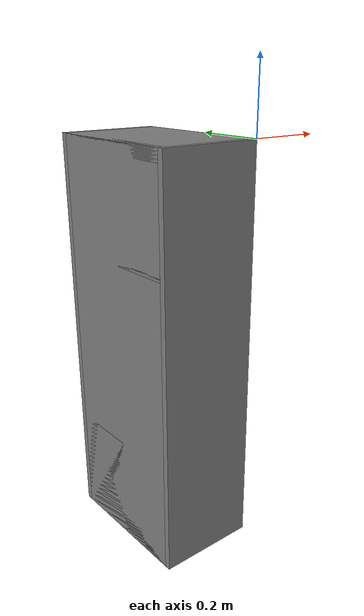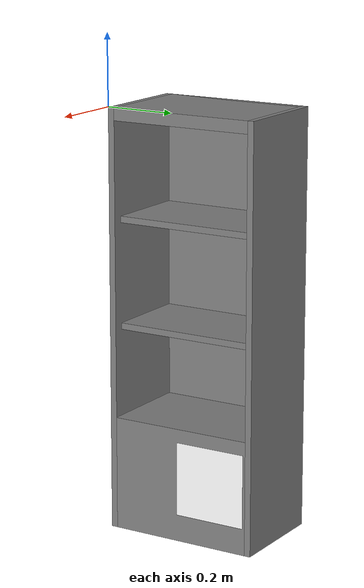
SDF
<?xml version="1.0" ?>
<sdf version="1.4">
    <model name='hcr_shefl_2'>
      <link name='link'>
        <inertial>
          <mass>5</mass>
          <inertia>
            <ixx>1</ixx>
            <ixy>0</ixy>
            <ixz>0</ixz>
            <iyy>1</iyy>
            <iyz>0</iyz>
            <izz>1</izz>
          </inertia>
        </inertial>
        <visual name='left_board'>
          <pose>-0.1475 0.009 -0.598 0 0 0</pose>
          <geometry>
            <box>
              <size>0.295 0.018 1.196</size>
            </box>
          </geometry>
          <material>
            <!-- base_materials/wood -->
            <name>wood</name>
            <ambient>1 1 1 1</ambient>
            <diffuse>0.5 0.5 0.5 1.0</diffuse>
            <specular>0 0 0 1.0</specular>
            <shininess>12.5</shininess>
            <pbr>
              <metal>
                <albedo_map>model://base_materials/wood/textures/light_wood.png</albedo_map>
                <max_anisotropy>16</max_anisotropy>
                <metalness>0</metalness>
              </metal>
            </pbr>
          </material>
        </visual>
        <collision name='collision_left_board'>
          <pose>-0.1475 0.009 -0.598 0 0 0</pose>
          <geometry>
            <box>
              <size>0.295 0.018 1.196</size>
            </box>
          </geometry>
          <max_contacts>10</max_contacts>
          <surface>
            <bounce/>
            <friction>
              <ode/>
            </friction>
            <contact>
              <ode/>
            </contact>
          </surface>
        </collision>
        <visual name='right_board'>
          <pose>-0.1475 0.441 -0.598 0 0 0</pose>
          <geometry>
            <box>
              <size>0.295 0.018 1.196</size>
            </box>
          </geometry>
          <material>
            <!-- base_materials/wood -->
            <name>wood</name>
            <ambient>1 1 1 1</ambient>
            <diffuse>0.5 0.5 0.5 1.0</diffuse>
            <specular>0 0 0 1.0</specular>
            <shininess>12.5</shininess>
            <pbr>
              <metal>
                <albedo_map>model://base_materials/wood/textures/light_wood.png</albedo_map>
                <max_anisotropy>16</max_anisotropy>
                <metalness>0</metalness>
              </metal>
            </pbr>
          </material>
        </visual>
        <collision name='collision_right_board'>
          <pose>-0.1475 0.441 -0.598 0 0 0</pose>
          <geometry>
            <box>
              <size>0.295 0.018 1.196</size>
            </box>
          </geometry>
          <max_contacts>10</max_contacts>
          <surface>
            <bounce/>
            <friction>
              <ode/>
            </friction>
            <contact>
              <ode/>
            </contact>
          </surface>
        </collision>
        <visual name='top_board'>
          <pose>-0.1475 0.225 -0.0175 0 0 0</pose>
          <geometry>
            <box>
              <size>0.295 0.414 0.035</size>
            </box>
          </geometry>
          <material>
            <!-- base_materials/wood -->
            <name>wood</name>
            <ambient>1 1 1 1</ambient>
            <diffuse>0.5 0.5 0.5 1.0</diffuse>
            <specular>0 0 0 1.0</specular>
            <shininess>12.5</shininess>
            <pbr>
              <metal>
                <albedo_map>model://base_materials/wood/textures/light_wood.png</albedo_map>
                <max_anisotropy>16</max_anisotropy>
                <metalness>0</metalness>
              </metal>
            </pbr>
          </material>
        </visual>
        <collision name='collision_top_board'>
          <pose>-0.1475 0.225 -0.0175 0 0 0</pose>
          <geometry>
            <box>
              <size>0.295 0.414 0.035</size>
            </box>
          </geometry>
          <max_contacts>10</max_contacts>
          <surface>
            <bounce/>
            <friction>
              <ode/>
            </friction>
            <contact>
              <ode/>
            </contact>
          </surface>
        </collision>
        <visual name='1st_shelf'>
          <pose>-0.162 0.225 -0.311 0 0 0</pose>
          <geometry>
            <box>
              <size>0.266 0.414 0.018</size>
            </box>
          </geometry>
          <material>
            <!-- base_materials/wood -->
            <name>wood</name>
            <ambient>1 1 1 1</ambient>
            <diffuse>0.5 0.5 0.5 1.0</diffuse>
            <specular>0 0 0 1.0</specular>
            <shininess>12.5</shininess>
            <pbr>
              <metal>
                <albedo_map>model://base_materials/wood/textures/light_wood.png</albedo_map>
                <max_anisotropy>16</max_anisotropy>
                <metalness>0</metalness>
              </metal>
            </pbr>
          </material>
        </visual>
        <collision name='collision_1st_shelf'>
          <pose>-0.162 0.225 -0.311 0 0 0</pose>
          <geometry>
            <box>
              <size>0.266 0.414 0.018</size>
            </box>
          </geometry>
          <max_contacts>10</max_contacts>
          <surface>
            <bounce/>
            <friction>
              <ode/>
            </friction>
            <contact>
              <ode/>
            </contact>
          </surface>
        </collision>
        <visual name='2nd_shelf'>
          <pose>-0.162 0.225 -0.613 0 0 0</pose>
          <geometry>
            <box>
              <size>0.266 0.414 0.018</size>
            </box>
          </geometry>
          <material>
            <!-- base_materials/wood -->
            <name>wood</name>
            <ambient>1 1 1 1</ambient>
            <diffuse>0.5 0.5 0.5 1.0</diffuse>
            <specular>0 0 0 1.0</specular>
            <shininess>12.5</shininess>
            <pbr>
              <metal>
                <albedo_map>model://base_materials/wood/textures/light_wood.png</albedo_map>
                <max_anisotropy>16</max_anisotropy>
                <metalness>0</metalness>
              </metal>
            </pbr>
          </material>
        </visual>
        <collision name='collision_2nd_shelf'>
          <pose>-0.162 0.225 -0.613 0 0 0</pose>
          <geometry>
            <box>
              <size>0.266 0.414 0.018</size>
            </box>
          </geometry>
          <max_contacts>10</max_contacts>
          <surface>
            <bounce/>
            <friction>
              <ode/>
            </friction>
            <contact>
              <ode/>
            </contact>
          </surface>
        </collision>
        <visual name='bottom_board'>
          <pose>-0.1475 0.225 -1.0335 0 0 0</pose>
          <geometry>
            <box>
              <size>0.295 0.414 0.325</size>
            </box>
          </geometry>
          <material>
            <!-- base_materials/wood -->
            <name>wood</name>
            <ambient>1 1 1 1</ambient>
            <diffuse>0.5 0.5 0.5 1.0</diffuse>
            <specular>0 0 0 1.0</specular>
            <shininess>12.5</shininess>
            <pbr>
              <metal>
                <albedo_map>model://base_materials/wood/textures/light_wood.png</albedo_map>
                <max_anisotropy>16</max_anisotropy>
                <metalness>0</metalness>
              </metal>
            </pbr>
          </material>
        </visual>
        <collision name='collision_bottom_board'>
          <pose>-0.1475 0.225 -1.0335 0 0 0</pose>
          <geometry>
            <box>
              <size>0.295 0.414 0.325</size>
            </box>
          </geometry>
          <max_contacts>10</max_contacts>
          <surface>
            <bounce/>
            <friction>
              <ode/>
            </friction>
            <contact>
              <ode/>
            </contact>
          </surface>
        </collision>
        <visual name='back_board'>
          <pose>-0.286 0.225 -0.598 0 0 0</pose>
          <geometry>
            <box>
              <size>0.018 0.414 1.196</size>
            </box>
          </geometry>
          <material>
            <!-- base_materials/wood -->
            <name>wood</name>
            <ambient>1 1 1 1</ambient>
            <diffuse>0.5 0.5 0.5 1.0</diffuse>
            <specular>0 0 0 1.0</specular>
            <shininess>12.5</shininess>
            <pbr>
              <metal>
                <albedo_map>model://base_materials/wood/textures/light_wood.png</albedo_map>
                <max_anisotropy>16</max_anisotropy>
                <metalness>0</metalness>
              </metal>
            </pbr>
          </material>
        </visual>
        <collision name='collision_back_board'>
          <pose>-0.286 0.225 -0.598 0 0 0</pose>
          <geometry>
            <box>
              <size>0.018 0.414 1.196</size>
            </box>
          </geometry>
          <max_contacts>10</max_contacts>
          <surface>
            <bounce/>
            <friction>
              <ode/>
            </friction>
            <contact>
              <ode/>
            </contact>
          </surface>
        </collision>
        <visual name='marker_0030'>
          <pose>0 0.32 -1.015 0 0 0</pose>
          <geometry>
            <box>
              <size>0.0001 0.21 0.21</size>
            </box>
          </geometry>
          <material>
            <name>Marker/0030</name>

            <ambient>1 1 1 1</ambient>  <!-- 周囲光 (真っ白) -->
            <diffuse>1 1 1 1</diffuse>  <!-- 反射光 (真っ白) -->
            <specular>0 0 0 1</specular>  <!-- 鏡面反射 (無し) -->
            <emissive>0 0 0 0</emissive>  <!-- 発光 (無し) -->

            <pbr>
              <metal>
                <albedo_map>marker/0030/textures/BchThin_Id0030_Size0140.png</albedo_map>
                <max_anisotropy>16</max_anisotropy>
                <metalness>0.0</metalness> <!-- 金属感を排除 -->
              </metal>
            </pbr>
          </material>
        </visual>
        <collision name='collision_marker_0030'>
          <pose>0 0.32 -1.015 0 0 0</pose>
          <geometry>
            <box>
              <size>0.0001 0.21 0.21</size>
            </box>
          </geometry>
          <max_contacts>10</max_contacts>
          <surface>
            <bounce/>
            <friction>
              <ode/>
            </friction>
            <contact>
              <ode/>
            </contact>
          </surface>
        </collision>
        <velocity_decay>
          <linear>0</linear>
          <angular>0</angular>
        </velocity_decay>
        <self_collide>0</self_collide>
        <kinematic>0</kinematic>
        <gravity>1</gravity>
      </link>
      <static>1</static>
    </model>
</sdf>
